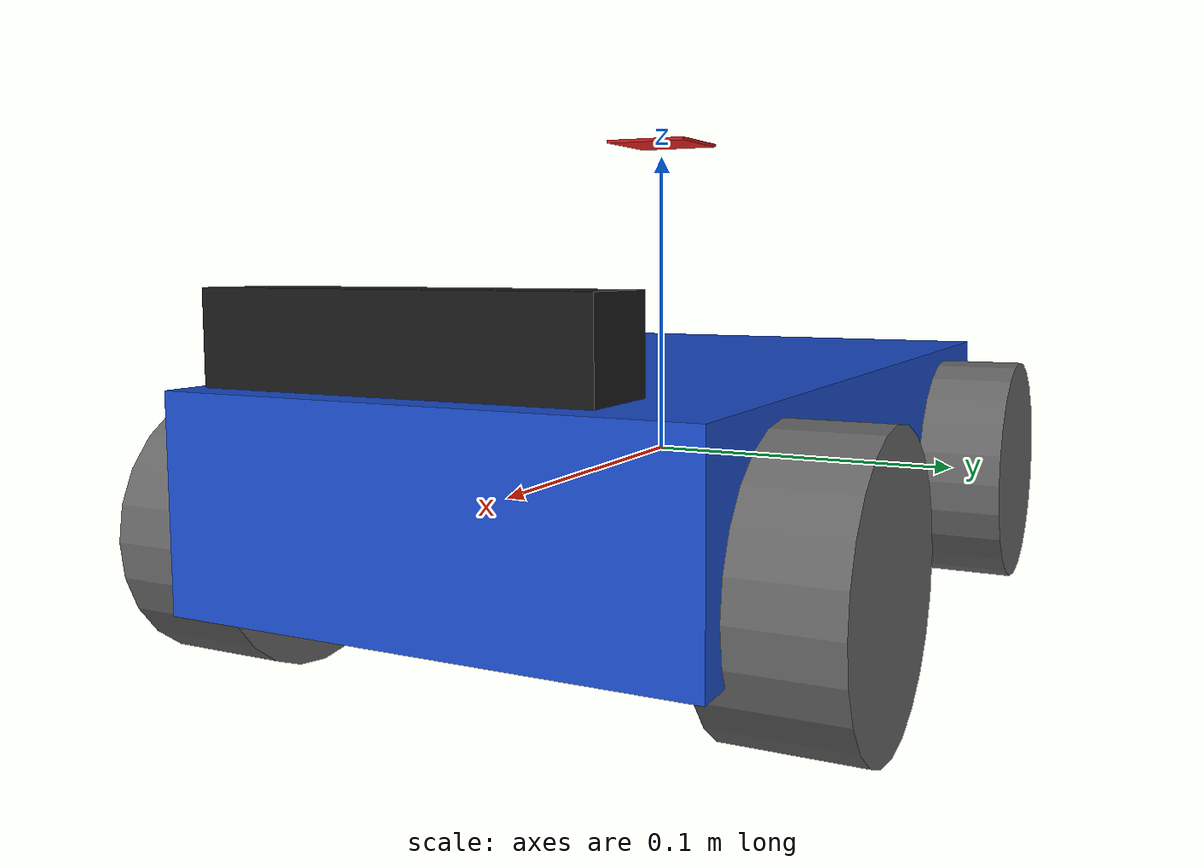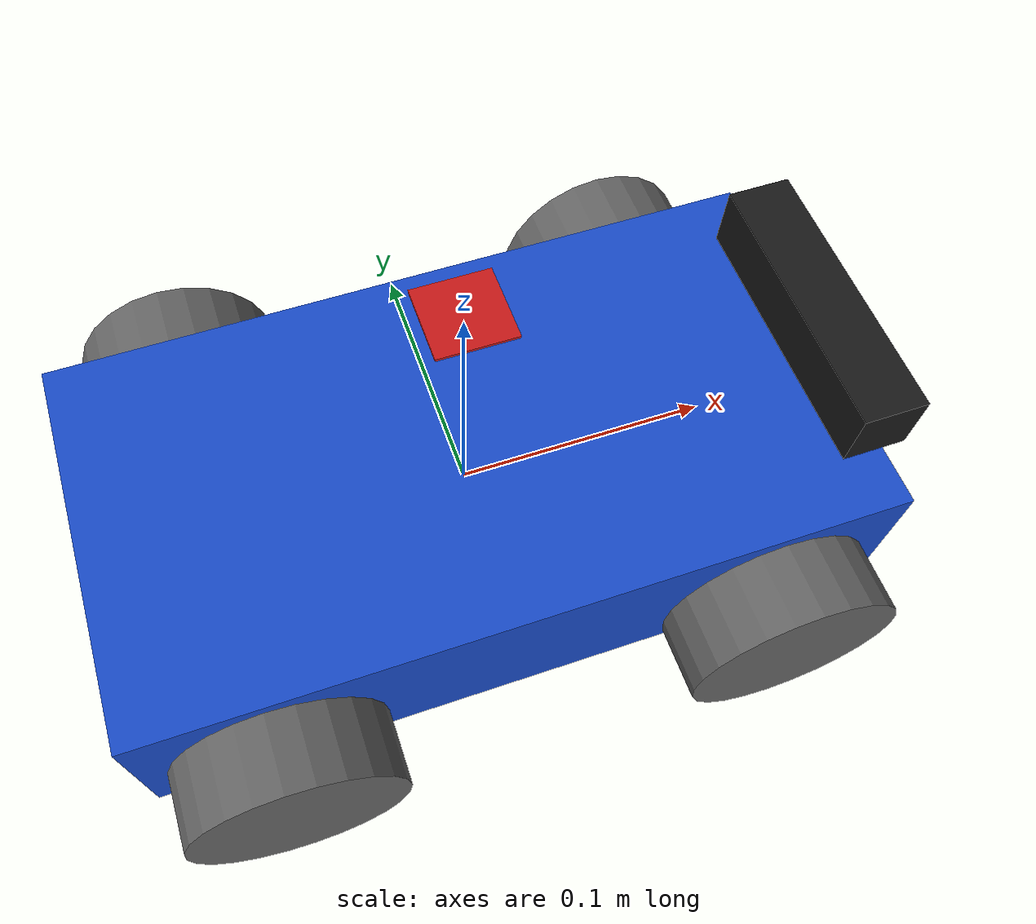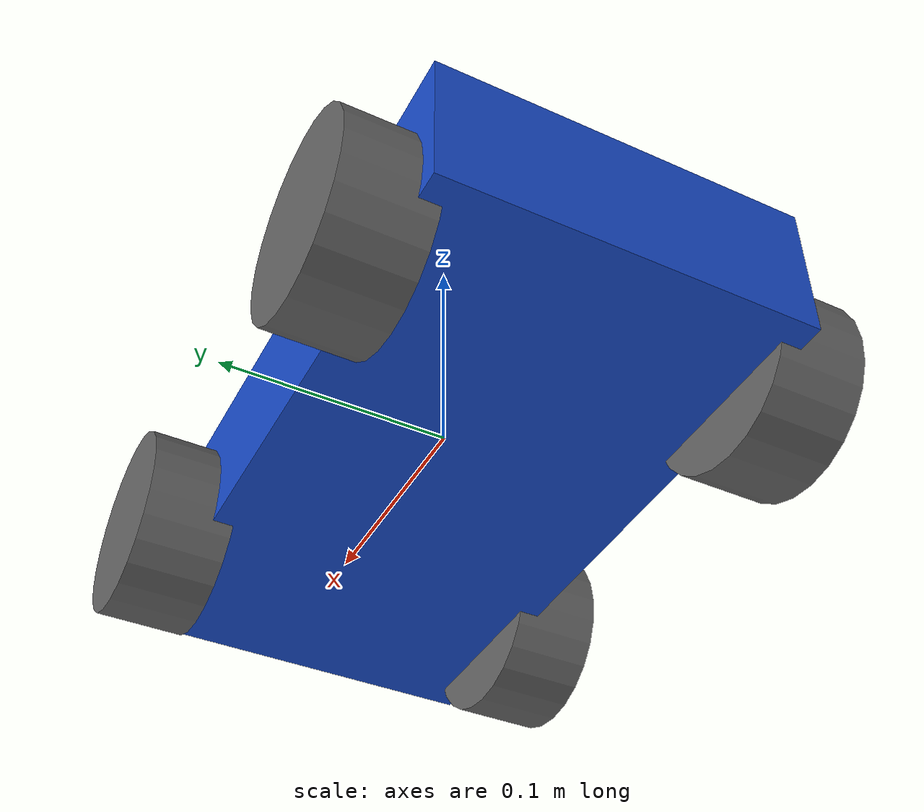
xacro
<?xml version="1.0"?>
<robot name="saps_robot" xmlns:xacro="http://ros.org/wiki/xacro">

  <!-- 로봇 크기 속성 (단위: m) -->
  <xacro:property name="base_width" value="0.155"/>
  <xacro:property name="base_length" value="0.29"/>
  <xacro:property name="base_height" value="0.061"/>
  <xacro:property name="wheel_radius" value="0.041"/>
  <xacro:property name="wheel_width" value="0.0375"/>

  <!-- 바퀴 중심 위치 (MecanumbaseNode의 lx=0.096, ly=0.0875와 동일) -->
  <xacro:property name="wheel_offset_x" value="0.096"/>
  <xacro:property name="wheel_offset_y" value="0.0875"/>

  <!-- 로봇 몸체 (base_link) -->
  <link name="base_link">
    <visual>
      <geometry>
        <box size="${base_length} ${base_width} ${base_height}"/>
      </geometry>
      <material name="blue">
        <color rgba="0.1 0.3 0.8 1.0"/>
      </material>
    </visual>
    <collision>
      <geometry>
        <box size="${base_length} ${base_width} ${base_height}"/>
      </geometry>
    </collision>
  </link>

  <!-- 메카넘 휠 생성 매크로 -->
  <xacro:macro name="mecanum_wheel" params="prefix x_reflect y_reflect">
    <link name="${prefix}_wheel_link">
      <visual>
        <origin xyz="0 0 0" rpy="${pi/2} 0 0"/>
        <geometry>
          <cylinder radius="${wheel_radius}" length="${wheel_width}"/>
        </geometry>
        <material name="gray">
          <color rgba="0.4 0.4 0.4 1.0"/>
        </material>
      </visual>
      <collision>
        <origin xyz="0 0 0" rpy="${pi/2} 0 0"/>
        <geometry>
          <cylinder radius="${wheel_radius}" length="${wheel_width}"/>
        </geometry>
      </collision>
    </link>

    <joint name="${prefix}_wheel_joint" type="continuous">
      <parent link="base_link"/>
      <child link="${prefix}_wheel_link"/>
      <origin xyz="${x_reflect * wheel_offset_x} ${y_reflect * wheel_offset_y} -0.015" rpy="0 0 0"/>
      <axis xyz="0 1 0"/>
    </joint>
  </xacro:macro>

  <!-- 4개 바퀴 인스턴스화 (FL, FR, RL, RR) -->
  <xacro:mecanum_wheel prefix="fl" x_reflect="1" y_reflect="1" />
  <xacro:mecanum_wheel prefix="fr" x_reflect="1" y_reflect="-1" />
  <xacro:mecanum_wheel prefix="rl" x_reflect="-1" y_reflect="1" />
  <xacro:mecanum_wheel prefix="rr" x_reflect="-1" y_reflect="-1" />

  <link name="imu_link">
    <visual>
      <origin xyz="0 0 0" rpy="0 0 0"/>
      <geometry>
        <box size="0.028 0.028 0.001"/>
      </geometry>
      <material name="red">
        <color rgba="0.8 0.1 0.1 1.0"/>
      </material>
    </visual>
    <collision>
      <origin xyz="0 0 0" rpy="0 0 0"/>
      <geometry>
        <box size="0.028 0.028 0.001"/>
      </geometry>
    </collision>
  </link>

  <joint name="imu_joint" type="fixed">
    <parent link="base_link"/>
    <child link="imu_link"/>
    <origin xyz="0 0 ${base_height/2 + 0.074}" rpy="0 0 0"/>
  </joint>

  <!-- ############ SENSORS ############ -->

  <!-- Intel RealSense D455 Camera -->
  <!-- 1. 카메라 외형의 정중앙을 나타내는 링크 (시각적 박스를 여기에 둡니다) -->
  <link name="camera_center_link">
    <visual>
      <origin xyz="0 0 0" rpy="0 0 0"/>
      <geometry>
        <box size="0.025 0.110 0.025"/> <!-- D455 실제 크기 -->
      </geometry>
      <material name="black">
        <color rgba="0.1 0.1 0.1 1.0"/>
      </material>
    </visual>
  </link>

  <joint name="camera_center_joint" type="fixed">
    <parent link="base_link"/>
    <child link="camera_center_link"/>
    <!-- 로봇 앞쪽 중앙, 몸체 위 5cm에 위치. 실제 부착 위치에 맞게 자로 재서 수정하세요! -->
    <origin xyz="0.14 0 ${base_height/2 + 0.015}" rpy="0 0 0"/>
  </joint>

  <!-- 2. RealSense 드라이버가 기준점으로dd 사용하는 실제 '왼쪽 뎁스 렌즈'의 위치 -->
  <link name="camera_link"/>
  <joint name="camera_lens_joint" type="fixed">
    <parent link="camera_center_link"/>
    <child link="camera_link"/>
    <!-- D455는 정중앙에서 왼쪽(y축 양의방향)으로 4.75cm 떨어진 곳에 기준 뎁스 렌즈가 있습니다 -->
    <origin xyz="0 0.0475 0" rpy="0 0 0"/>
  </joint>

  <!-- ####### Robot Arm ####### -->

</robot>
